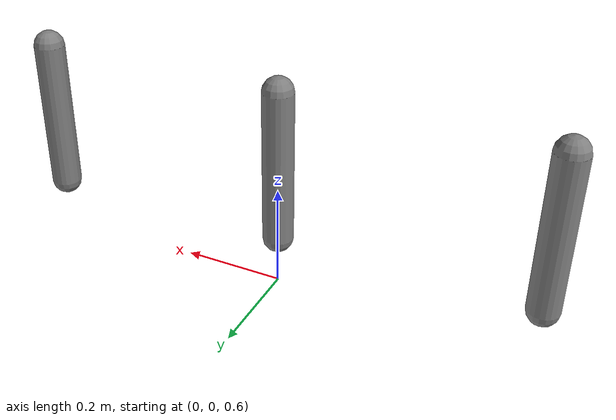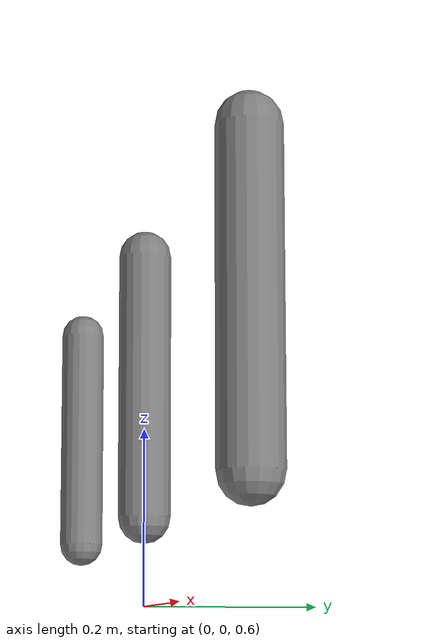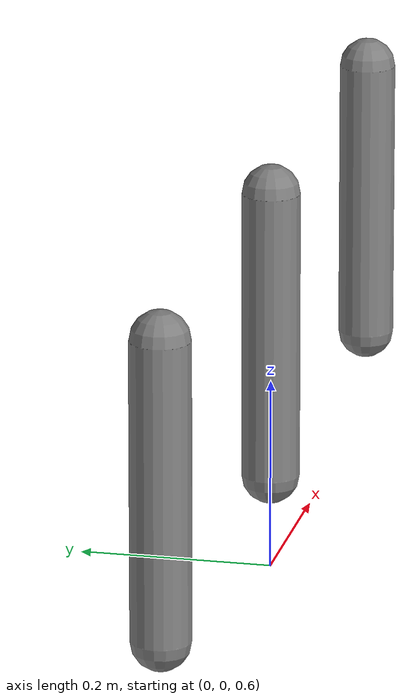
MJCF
<mujoco model="actuator_showcase">
  <compiler angle="radian"/><option timestep="0.001" gravity="0 0 0"/>
  <worldbody>
    <body pos="-.5 0 1"><joint name="motor_joint"/><geom type="capsule" fromto="0 0 0 0 0 -.3" size=".03" mass=".5"/></body>
    <body pos="0 0 1"><joint name="position_joint"/><geom type="capsule" fromto="0 0 0 0 0 -.3" size=".03" mass=".5"/></body>
    <body pos=".5 0 1"><joint name="velocity_joint"/><geom type="capsule" fromto="0 0 0 0 0 -.3" size=".03" mass=".5"/></body>
  </worldbody>
  <actuator>
    <motor name="direct_torque" joint="motor_joint" ctrlrange="-2 2" ctrllimited="true"/>
    <position name="position_servo" joint="position_joint" kp="20" kv="2"/>
    <velocity name="velocity_servo" joint="velocity_joint" kv="2"/>
  </actuator>
</mujoco>
